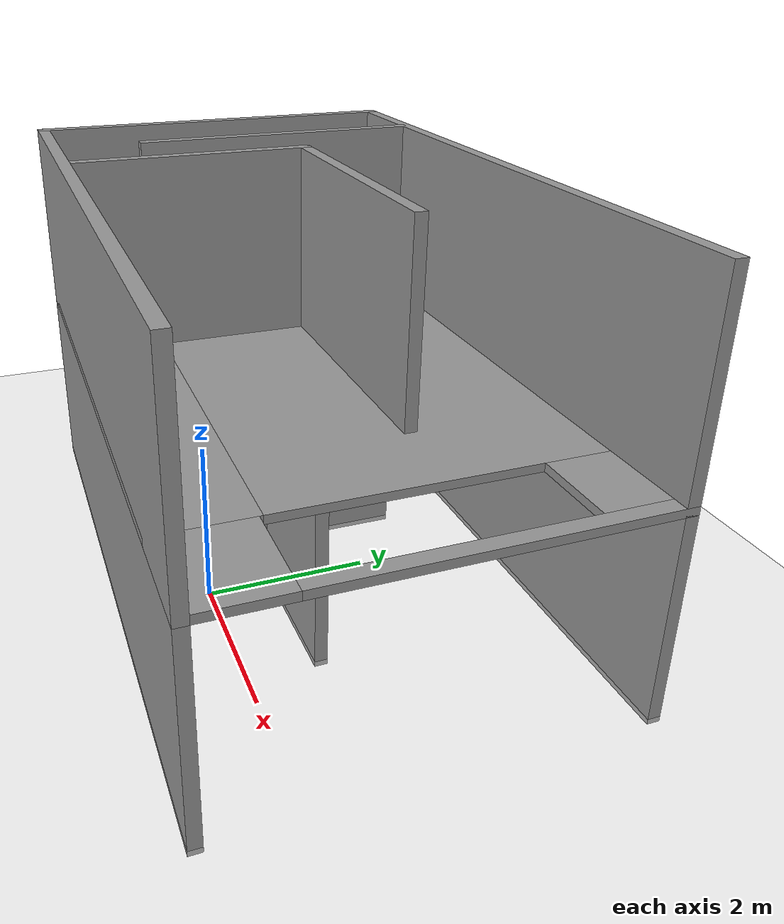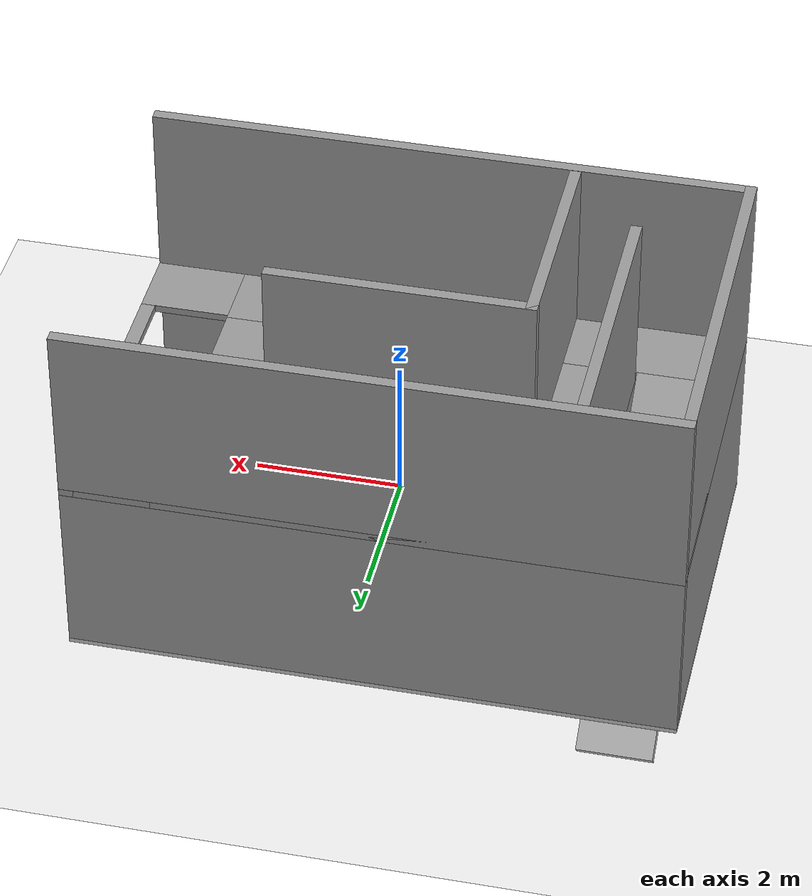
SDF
<sdf version="1.7">
 <world name="default">
  <model name="ground_plane">
   <static>1</static>
   <link name="link">
    <collision name="collision">
     <geometry><plane><normal>0 0 1</normal><size>100 100</size></plane></geometry>
     <surface>
      <contact><collide_bitmask>65535</collide_bitmask></contact>
      <friction><ode><mu>100</mu><mu2>50</mu2></ode></friction>
     </surface>
    </collision>
    <visual name="visual">
     <cast_shadows>0</cast_shadows>
     <geometry><plane><normal>0 0 1</normal><size>100 100</size></plane></geometry>
     <material>
      <script><uri>file://media/materials/scripts/gazebo.material</uri><name>Gazebo/Grey</name></script>
     </material>
    </visual>
   </link>
  </model>
  <model name="test2">
   <pose>0.709104 2.22387 -0.073744 0 -0 0</pose>
   <link name="Floor_0">
    <pose>-1.16289 -0.828418 2.5 0 -0 0</pose>
    <visual name="Floor_0_Visual_0">
     <pose>-3.84843 0 0.05 0 -0 0</pose>
     <geometry><box><size>0.303133 5 0.1</size></box></geometry>
     <material>
      <script><uri>file://media/materials/scripts/gazebo.material</uri><name>Gazebo/Grey</name></script>
      <ambient>1 1 1 1</ambient>
     </material>
     <meta><layer>1</layer></meta>
    </visual>
    <collision name="Floor_0_Collision_0">
     <geometry><box><size>0.303133 5 0.1</size></box></geometry>
     <pose>-3.84843 0 0.05 0 -0 0</pose>
    </collision>
    <visual name="Floor_0_Visual_1">
     <pose>-0.443444 -1.94023 0.05 0 -0 0</pose>
     <geometry><box><size>6.50685 1.11955 0.1</size></box></geometry>
     <material>
      <script><uri>file://media/materials/scripts/gazebo.material</uri><name>Gazebo/Grey</name></script>
      <ambient>1 1 1 1</ambient>
     </material>
     <meta><layer>1</layer></meta>
    </visual>
    <collision name="Floor_0_Collision_1">
     <geometry><box><size>6.50685 1.11955 0.1</size></box></geometry>
     <pose>-0.443444 -1.94023 0.05 0 -0 0</pose>
    </collision>
    <visual name="Floor_0_Visual_2">
     <pose>3.40499 -1.96002 0.05 0 -0 0</pose>
     <geometry><box><size>1.19002 1.07996 0.1</size></box></geometry>
     <material>
      <script><uri>file://media/materials/scripts/gazebo.material</uri><name>Gazebo/Grey</name></script>
      <ambient>1 1 1 1</ambient>
     </material>
     <meta><layer>1</layer></meta>
    </visual>
    <collision name="Floor_0_Collision_2">
     <geometry><box><size>1.19002 1.07996 0.1</size></box></geometry>
     <pose>3.40499 -1.96002 0.05 0 -0 0</pose>
    </collision>
    <visual name="Floor_0_Visual_3">
     <pose>3.90499 0.539981 0.05 0 -0 0</pose>
     <geometry><box><size>0.19002 3.92004 0.1</size></box></geometry>
     <material>
      <script><uri>file://media/materials/scripts/gazebo.material</uri><name>Gazebo/Grey</name></script>
      <ambient>1 1 1 1</ambient>
     </material>
     <meta><layer>1</layer></meta>
    </visual>
    <collision name="Floor_0_Collision_3">
     <geometry><box><size>0.19002 3.92004 0.1</size></box></geometry>
     <pose>3.90499 0.539981 0.05 0 -0 0</pose>
    </collision>
    <visual name="Floor_0_Visual_4">
     <pose>0.056556 0.559775 0.05 0 -0 0</pose>
     <geometry><box><size>5.50685 3.88045 0.1</size></box></geometry>
     <material>
      <script><uri>file://media/materials/scripts/gazebo.material</uri><name>Gazebo/Grey</name></script>
      <ambient>1 1 1 1</ambient>
     </material>
     <meta><layer>1</layer></meta>
    </visual>
    <collision name="Floor_0_Collision_4">
     <geometry><box><size>5.50685 3.88045 0.1</size></box></geometry>
     <pose>0.056556 0.559775 0.05 0 -0 0</pose>
    </collision>
    <visual name="Floor_0_Visual_5">
     <pose>3.30998 2.03998 0.05 0 -0 0</pose>
     <geometry><box><size>1 0.920038 0.1</size></box></geometry>
     <material>
      <script><uri>file://media/materials/scripts/gazebo.material</uri><name>Gazebo/Grey</name></script>
      <ambient>1 1 1 1</ambient>
     </material>
     <meta><layer>1</layer></meta>
    </visual>
    <collision name="Floor_0_Collision_5">
     <geometry><box><size>1 0.920038 0.1</size></box></geometry>
     <pose>3.30998 2.03998 0.05 0 -0 0</pose>
    </collision>
    <visual name="Floor_0_Visual_6">
     <pose>-3.19687 2.05978 0.05 0 -0 0</pose>
     <geometry><box><size>1 0.88045 0.1</size></box></geometry>
     <material>
      <script><uri>file://media/materials/scripts/gazebo.material</uri><name>Gazebo/Grey</name></script>
      <ambient>1 1 1 1</ambient>
     </material>
     <meta><layer>1</layer></meta>
    </visual>
    <collision name="Floor_0_Collision_6">
     <geometry><box><size>1 0.88045 0.1</size></box></geometry>
     <pose>-3.19687 2.05978 0.05 0 -0 0</pose>
    </collision>
   </link>
   <link name="Wall_36">
    <collision name="Wall_36_Collision">
     <geometry><box><size>5 0.15 2.5</size></box></geometry>
     <pose>0 0 1.25 0 -0 0</pose>
    </collision>
    <visual name="Wall_36_Visual">
     <pose>0 0 1.25 0 -0 0</pose>
     <geometry><box><size>5 0.15 2.5</size></box></geometry>
     <material>
      <script><uri>file://media/materials/scripts/gazebo.material</uri><name>Gazebo/Grey</name></script>
      <ambient>1 1 1 1</ambient>
     </material>
     <meta><layer>0</layer></meta>
    </visual>
    <pose>-5.08789 -0.828418 0 0 -0 -1.5708</pose>
   </link>
   <link name="Wall_37">
    <collision name="Wall_37_Collision">
     <geometry><box><size>8 0.15 2.5</size></box></geometry>
     <pose>0 0 1.25 0 -0 0</pose>
    </collision>
    <visual name="Wall_37_Visual">
     <pose>0 0 1.25 0 -0 0</pose>
     <geometry><box><size>8 0.15 2.5</size></box></geometry>
     <material>
      <script><uri>file://media/materials/scripts/gazebo.material</uri><name>Gazebo/Grey</name></script>
      <ambient>1 1 1 1</ambient>
     </material>
     <meta><layer>0</layer></meta>
    </visual>
    <pose>-1.16289 -3.25342 0 0 -0 0</pose>
   </link>
   <link name="Wall_39">
    <collision name="Wall_39_Collision">
     <geometry><box><size>8 0.15 2.5</size></box></geometry>
     <pose>0 0 1.25 0 -0 0</pose>
    </collision>
    <visual name="Wall_39_Visual">
     <pose>0 0 1.25 0 -0 0</pose>
     <geometry><box><size>8 0.15 2.5</size></box></geometry>
     <material>
      <script><uri>file://media/materials/scripts/gazebo.material</uri><name>Gazebo/Grey</name></script>
      <ambient>1 1 1 1</ambient>
     </material>
     <meta><layer>0</layer></meta>
    </visual>
    <pose>-1.16289 1.59658 0 0 -0 3.14159</pose>
   </link>
   <link name="Wall_41">
    <collision name="Wall_41_Collision">
     <geometry><box><size>3 0.15 2.5</size></box></geometry>
     <pose>0 0 1.25 0 -0 0</pose>
    </collision>
    <visual name="Wall_41_Visual">
     <pose>0 0 1.25 0 -0 0</pose>
     <geometry><box><size>3 0.15 2.5</size></box></geometry>
     <material>
      <script><uri>file://media/materials/scripts/gazebo.material</uri><name>Gazebo/Grey</name></script>
      <ambient>1 1 1 1</ambient>
     </material>
     <meta><layer>0</layer></meta>
    </visual>
    <pose>-2.84103 0.045931 0 0 -0 -1.5708</pose>
   </link>
   <link name="Wall_43">
    <collision name="Wall_43_Collision">
     <geometry><box><size>1.25 0.15 2.5</size></box></geometry>
     <pose>0 0 1.25 0 -0 0</pose>
    </collision>
    <visual name="Wall_43_Visual">
     <pose>0 0 1.25 0 -0 0</pose>
     <geometry><box><size>1.25 0.15 2.5</size></box></geometry>
     <material>
      <script><uri>file://media/materials/scripts/gazebo.material</uri><name>Gazebo/Grey</name></script>
      <ambient>1 1 1 1</ambient>
     </material>
     <meta><layer>0</layer></meta>
    </visual>
    <pose>-2.29103 -1.37907 0 0 -0 0</pose>
   </link>
   <link name="Wall_44">
    <collision name="Wall_44_Collision">
     <geometry><box><size>2 0.15 2.5</size></box></geometry>
     <pose>0 0 1.25 0 -0 0</pose>
    </collision>
    <visual name="Wall_44_Visual">
     <pose>0 0 1.25 0 -0 0</pose>
     <geometry><box><size>2 0.15 2.5</size></box></geometry>
     <material>
      <script><uri>file://media/materials/scripts/gazebo.material</uri><name>Gazebo/Grey</name></script>
      <ambient>1 1 1 1</ambient>
     </material>
     <meta><layer>0</layer></meta>
    </visual>
    <pose>-1.74103 -0.454069 0 0 -0 1.5708</pose>
   </link>
   <link name="Wall_46">
    <collision name="Wall_46_Collision">
     <geometry><box><size>1.75 0.15 2.5</size></box></geometry>
     <pose>0 0 1.25 0 -0 0</pose>
    </collision>
    <visual name="Wall_46_Visual">
     <pose>0 0 1.25 0 -0 0</pose>
     <geometry><box><size>1.75 0.15 2.5</size></box></geometry>
     <material>
      <script><uri>file://media/materials/scripts/gazebo.material</uri><name>Gazebo/Grey</name></script>
      <ambient>1 1 1 1</ambient>
     </material>
     <meta><layer>0</layer></meta>
    </visual>
    <pose>-0.000447 -1.34784 0 0 -0 0</pose>
   </link>
   <link name="Wall_50">
    <collision name="Wall_50_Collision">
     <geometry><box><size>5 0.15 2.5</size></box></geometry>
     <pose>0 0 1.25 0 -0 0</pose>
    </collision>
    <visual name="Wall_50_Visual">
     <pose>0 0 1.25 0 -0 0</pose>
     <geometry><box><size>5 0.15 2.5</size></box></geometry>
     <material>
      <script><uri>file://media/materials/scripts/gazebo.material</uri><name>Gazebo/Grey</name></script>
      <ambient>1 1 1 1</ambient>
     </material>
     <meta><layer>1</layer></meta>
    </visual>
    <pose>-5.08789 -0.828418 2.5 0 -0 -1.5708</pose>
   </link>
   <link name="Wall_51">
    <collision name="Wall_51_Collision">
     <geometry><box><size>8 0.15 2.5</size></box></geometry>
     <pose>0 0 1.25 0 -0 0</pose>
    </collision>
    <visual name="Wall_51_Visual">
     <pose>0 0 1.25 0 -0 0</pose>
     <geometry><box><size>8 0.15 2.5</size></box></geometry>
     <material>
      <script><uri>file://media/materials/scripts/gazebo.material</uri><name>Gazebo/Grey</name></script>
      <ambient>1 1 1 1</ambient>
     </material>
     <meta><layer>1</layer></meta>
    </visual>
    <pose>-1.16289 -3.25342 2.5 0 -0 0</pose>
   </link>
   <link name="Wall_53">
    <collision name="Wall_53_Collision">
     <geometry><box><size>8 0.15 2.5</size></box></geometry>
     <pose>0 0 1.25 0 -0 0</pose>
    </collision>
    <visual name="Wall_53_Visual">
     <pose>0 0 1.25 0 -0 0</pose>
     <geometry><box><size>8 0.15 2.5</size></box></geometry>
     <material>
      <script><uri>file://media/materials/scripts/gazebo.material</uri><name>Gazebo/Grey</name></script>
      <ambient>1 1 1 1</ambient>
     </material>
     <meta><layer>1</layer></meta>
    </visual>
    <pose>-1.16289 1.59658 2.5 0 -0 3.14159</pose>
   </link>
   <link name="Wall_59">
    <collision name="Wall_59_Collision">
     <geometry><box><size>3.75 0.15 2.5</size></box></geometry>
     <pose>0 0 1.25 0 -0 0</pose>
    </collision>
    <visual name="Wall_59_Visual">
     <pose>0 0 1.25 0 -0 0</pose>
     <geometry><box><size>3.75 0.15 2.5</size></box></geometry>
     <material>
      <script><uri>file://media/materials/scripts/gazebo.material</uri><name>Gazebo/Grey</name></script>
      <ambient>1 1 1 1</ambient>
     </material>
     <meta><layer>1</layer></meta>
    </visual>
    <pose>-3.79215 -0.294483 2.5 0 -0 -1.5708</pose>
   </link>
   <link name="Wall_64">
    <collision name="Wall_64_Collision">
     <geometry><box><size>3 0.15 2.5</size></box></geometry>
     <pose>0 0 1.25 0 -0 0</pose>
    </collision>
    <visual name="Wall_64_Visual">
     <pose>0 0 1.25 0 -0 0</pose>
     <geometry><box><size>3 0.15 2.5</size></box></geometry>
     <material>
      <script><uri>file://media/materials/scripts/gazebo.material</uri><name>Gazebo/Grey</name></script>
      <ambient>1 1 1 1</ambient>
     </material>
     <meta><layer>1</layer></meta>
    </visual>
    <pose>-2.8224 -1.67479 2.5 0 -0 -1.5708</pose>
   </link>
   <link name="Wall_66">
    <collision name="Wall_66_Collision">
     <geometry><box><size>3.5 0.15 2.5</size></box></geometry>
     <pose>0 0 1.25 0 -0 0</pose>
    </collision>
    <visual name="Wall_66_Visual">
     <pose>0 0 1.25 0 -0 0</pose>
     <geometry><box><size>3.5 0.15 2.5</size></box></geometry>
     <material>
      <script><uri>file://media/materials/scripts/gazebo.material</uri><name>Gazebo/Grey</name></script>
      <ambient>1 1 1 1</ambient>
     </material>
     <meta><layer>1</layer></meta>
    </visual>
    <pose>-1.1474 -0.249788 2.5 0 -0 0</pose>
   </link>
   <static>1</static>
  </model>
  <model name="slope_base">
   <link name="link">
    <inertial>
     <mass>1</mass>
     <inertia>
      <ixx>0.166667</ixx>
      <ixy>0</ixy>
      <ixz>0</ixz>
      <iyy>0.166667</iyy>
      <iyz>0</iyz>
      <izz>0.166667</izz>
     </inertia>
    </inertial>
    <visual name="visual">
     <geometry><box><size>1 5 0.2</size></box></geometry>
     <material>
      <script><name>Gazebo/Grey</name><uri>file://media/materials/scripts/gazebo.material</uri></script>
      <shader type="pixel"><normal_map>__default__</normal_map></shader>
      <ambient>0.3 0.3 0.3 1</ambient>
      <diffuse>0.7 0.7 0.7 1</diffuse>
      <specular>0.01 0.01 0.01 1</specular>
      <emissive>0 0 0 1</emissive>
     </material>
    </visual>
    <collision name="collision">
     <geometry><box><size>1 5 0.2</size></box></geometry>
     <surface>
      <friction>
       <ode><mu>1</mu><mu2>1</mu2><fdir1>0 0 0</fdir1><slip1>0</slip1><slip2>0</slip2></ode>
       <torsional>
        <coefficient>1</coefficient>
        <patch_radius>0</patch_radius>
        <surface_radius>0</surface_radius>
        <use_patch_radius>1</use_patch_radius>
        <ode><slip>0</slip></ode>
       </torsional>
      </friction>
      <bounce><restitution_coefficient>0</restitution_coefficient><threshold>1e+06</threshold></bounce>
      <contact>
       <collide_without_contact>0</collide_without_contact>
       <collide_without_contact_bitmask>1</collide_without_contact_bitmask>
       <collide_bitmask>1</collide_bitmask>
       <ode>
        <soft_cfm>0</soft_cfm>
        <soft_erp>0.2</soft_erp>
        <kp>1e+13</kp>
        <kd>1</kd>
        <max_vel>0.01</max_vel>
        <min_depth>0</min_depth>
       </ode>
       <bullet>
        <split_impulse>1</split_impulse>
        <split_impulse_penetration_threshold>-0.01</split_impulse_penetration_threshold>
        <soft_cfm>0</soft_cfm>
        <soft_erp>0.2</soft_erp>
        <kp>1e+13</kp>
        <kd>1</kd>
       </bullet>
      </contact>
     </surface>
    </collision>
   </link>
   <static>0</static>
   <pose>-3.66631 1.88354 0.872628 0.689073 -0 3.1388</pose>
  </model>
 </world>
</sdf>
